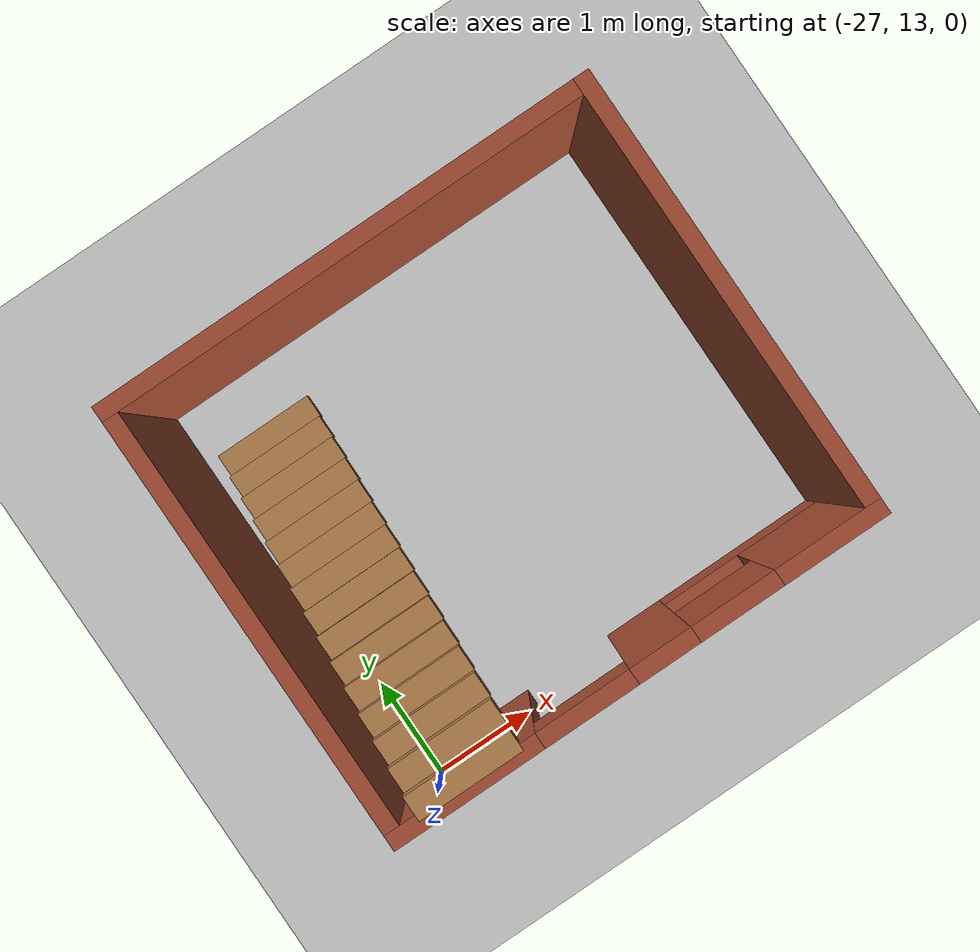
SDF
<sdf version="1.6">
 <world name="default">
  <light name="sun" type="directional">
   <pose>0 0 10 0 -0 0</pose>
   <diffuse>0.8 0.8 0.8 1</diffuse>
   <specular>0.2 0.2 0.2 1</specular>
   <attenuation>
    <range>1000</range>
    <constant>0.9</constant>
    <linear>0.01</linear>
    <quadratic>0.001</quadratic>
   </attenuation>
   <direction>-0.5 0.1 -0.9</direction>
  </light>
  <model name="ground_plane">
   <static>1</static>
   <link name="link">
    <collision name="collision">
     <geometry><plane><normal>0 0 1</normal><size>100 100</size></plane></geometry>
     <surface><friction><ode><mu>100</mu><mu2>50</mu2></ode></friction></surface>
    </collision>
    <visual name="visual">
     <cast_shadows>0</cast_shadows>
     <geometry><plane><normal>0 0 1</normal><size>100 100</size></plane></geometry>
     <material>
      <script><uri>file://media/materials/scripts/gazebo.material</uri><name>Gazebo/Grey</name></script>
     </material>
    </visual>
   </link>
  </model>
  <gravity>0 0 -9.8</gravity>
  <magnetic_field>6e-06 2.3e-05 -4.2e-05</magnetic_field>
  <atmosphere type="adiabatic"/>
  <physics name="default_physics" default="0" type="ode">
   <max_step_size>0.001</max_step_size>
   <real_time_factor>1</real_time_factor>
   <real_time_update_rate>1000</real_time_update_rate>
  </physics>
  <scene><ambient>0.4 0.4 0.4 1</ambient><background>0.7 0.7 0.7 1</background><shadows>1</shadows></scene>
  <spherical_coordinates>
   <surface_model>EARTH_WGS84</surface_model>
   <latitude_deg>0</latitude_deg>
   <longitude_deg>0</longitude_deg>
   <elevation>0</elevation>
   <heading_deg>0</heading_deg>
  </spherical_coordinates>
  <model name="Untitled">
   <pose>-24.9648 15.1998 0 0 -0 0</pose>
   <link name="Stairs_0">
    <visual name="Stairs_0_Visual_0">
     <pose>-1.58 1.29583 0.083333 0 -0 0</pose>
     <geometry><box><size>1 0.233333 0.166667</size></box></geometry>
     <material>
      <script><uri>file://media/materials/scripts/gazebo.material</uri><name>Gazebo/Wood</name></script>
      <ambient>1 1 1 1</ambient>
     </material>
     <meta><layer>0</layer></meta>
    </visual>
    <collision name="Stairs_0_Collision_0">
     <geometry><box><size>1 0.233333 0.166667</size></box></geometry>
     <pose>-1.58 1.29583 0.083333 0 -0 0</pose>
    </collision>
    <visual name="Stairs_0_Visual_1">
     <pose>-1.58 1.0625 0.25 0 -0 0</pose>
     <geometry><box><size>1 0.233333 0.166667</size></box></geometry>
     <material>
      <script><uri>file://media/materials/scripts/gazebo.material</uri><name>Gazebo/Wood</name></script>
      <ambient>1 1 1 1</ambient>
     </material>
     <meta><layer>0</layer></meta>
    </visual>
    <collision name="Stairs_0_Collision_1">
     <geometry><box><size>1 0.233333 0.166667</size></box></geometry>
     <pose>-1.58 1.0625 0.25 0 -0 0</pose>
    </collision>
    <visual name="Stairs_0_Visual_2">
     <pose>-1.58 0.829167 0.416667 0 -0 0</pose>
     <geometry><box><size>1 0.233333 0.166667</size></box></geometry>
     <material>
      <script><uri>file://media/materials/scripts/gazebo.material</uri><name>Gazebo/Wood</name></script>
      <ambient>1 1 1 1</ambient>
     </material>
     <meta><layer>0</layer></meta>
    </visual>
    <collision name="Stairs_0_Collision_2">
     <geometry><box><size>1 0.233333 0.166667</size></box></geometry>
     <pose>-1.58 0.829167 0.416667 0 -0 0</pose>
    </collision>
    <visual name="Stairs_0_Visual_3">
     <pose>-1.58 0.595834 0.583333 0 -0 0</pose>
     <geometry><box><size>1 0.233333 0.166667</size></box></geometry>
     <material>
      <script><uri>file://media/materials/scripts/gazebo.material</uri><name>Gazebo/Wood</name></script>
      <ambient>1 1 1 1</ambient>
     </material>
     <meta><layer>0</layer></meta>
    </visual>
    <collision name="Stairs_0_Collision_3">
     <geometry><box><size>1 0.233333 0.166667</size></box></geometry>
     <pose>-1.58 0.595834 0.583333 0 -0 0</pose>
    </collision>
    <visual name="Stairs_0_Visual_4">
     <pose>-1.58 0.3625 0.75 0 -0 0</pose>
     <geometry><box><size>1 0.233333 0.166667</size></box></geometry>
     <material>
      <script><uri>file://media/materials/scripts/gazebo.material</uri><name>Gazebo/Wood</name></script>
      <ambient>1 1 1 1</ambient>
     </material>
     <meta><layer>0</layer></meta>
    </visual>
    <collision name="Stairs_0_Collision_4">
     <geometry><box><size>1 0.233333 0.166667</size></box></geometry>
     <pose>-1.58 0.3625 0.75 0 -0 0</pose>
    </collision>
    <visual name="Stairs_0_Visual_5">
     <pose>-1.58 0.129167 0.916667 0 -0 0</pose>
     <geometry><box><size>1 0.233333 0.166667</size></box></geometry>
     <material>
      <script><uri>file://media/materials/scripts/gazebo.material</uri><name>Gazebo/Wood</name></script>
      <ambient>1 1 1 1</ambient>
     </material>
     <meta><layer>0</layer></meta>
    </visual>
    <collision name="Stairs_0_Collision_5">
     <geometry><box><size>1 0.233333 0.166667</size></box></geometry>
     <pose>-1.58 0.129167 0.916667 0 -0 0</pose>
    </collision>
    <visual name="Stairs_0_Visual_6">
     <pose>-1.58 -0.104167 1.08333 0 -0 0</pose>
     <geometry><box><size>1 0.233333 0.166667</size></box></geometry>
     <material>
      <script><uri>file://media/materials/scripts/gazebo.material</uri><name>Gazebo/Wood</name></script>
      <ambient>1 1 1 1</ambient>
     </material>
     <meta><layer>0</layer></meta>
    </visual>
    <collision name="Stairs_0_Collision_6">
     <geometry><box><size>1 0.233333 0.166667</size></box></geometry>
     <pose>-1.58 -0.104167 1.08333 0 -0 0</pose>
    </collision>
    <visual name="Stairs_0_Visual_7">
     <pose>-1.58 -0.3375 1.25 0 -0 0</pose>
     <geometry><box><size>1 0.233333 0.166667</size></box></geometry>
     <material>
      <script><uri>file://media/materials/scripts/gazebo.material</uri><name>Gazebo/Wood</name></script>
      <ambient>1 1 1 1</ambient>
     </material>
     <meta><layer>0</layer></meta>
    </visual>
    <collision name="Stairs_0_Collision_7">
     <geometry><box><size>1 0.233333 0.166667</size></box></geometry>
     <pose>-1.58 -0.3375 1.25 0 -0 0</pose>
    </collision>
    <visual name="Stairs_0_Visual_8">
     <pose>-1.58 -0.570833 1.41667 0 -0 0</pose>
     <geometry><box><size>1 0.233333 0.166667</size></box></geometry>
     <material>
      <script><uri>file://media/materials/scripts/gazebo.material</uri><name>Gazebo/Wood</name></script>
      <ambient>1 1 1 1</ambient>
     </material>
     <meta><layer>0</layer></meta>
    </visual>
    <collision name="Stairs_0_Collision_8">
     <geometry><box><size>1 0.233333 0.166667</size></box></geometry>
     <pose>-1.58 -0.570833 1.41667 0 -0 0</pose>
    </collision>
    <visual name="Stairs_0_Visual_9">
     <pose>-1.58 -0.804167 1.58333 0 -0 0</pose>
     <geometry><box><size>1 0.233333 0.166667</size></box></geometry>
     <material>
      <script><uri>file://media/materials/scripts/gazebo.material</uri><name>Gazebo/Wood</name></script>
      <ambient>1 1 1 1</ambient>
     </material>
     <meta><layer>0</layer></meta>
    </visual>
    <collision name="Stairs_0_Collision_9">
     <geometry><box><size>1 0.233333 0.166667</size></box></geometry>
     <pose>-1.58 -0.804167 1.58333 0 -0 0</pose>
    </collision>
    <visual name="Stairs_0_Visual_10">
     <pose>-1.58 -1.0375 1.75 0 -0 0</pose>
     <geometry><box><size>1 0.233333 0.166667</size></box></geometry>
     <material>
      <script><uri>file://media/materials/scripts/gazebo.material</uri><name>Gazebo/Wood</name></script>
      <ambient>1 1 1 1</ambient>
     </material>
     <meta><layer>0</layer></meta>
    </visual>
    <collision name="Stairs_0_Collision_10">
     <geometry><box><size>1 0.233333 0.166667</size></box></geometry>
     <pose>-1.58 -1.0375 1.75 0 -0 0</pose>
    </collision>
    <visual name="Stairs_0_Visual_11">
     <pose>-1.58 -1.27083 1.91667 0 -0 0</pose>
     <geometry><box><size>1 0.233333 0.166667</size></box></geometry>
     <material>
      <script><uri>file://media/materials/scripts/gazebo.material</uri><name>Gazebo/Wood</name></script>
      <ambient>1 1 1 1</ambient>
     </material>
     <meta><layer>0</layer></meta>
    </visual>
    <collision name="Stairs_0_Collision_11">
     <geometry><box><size>1 0.233333 0.166667</size></box></geometry>
     <pose>-1.58 -1.27083 1.91667 0 -0 0</pose>
    </collision>
    <visual name="Stairs_0_Visual_12">
     <pose>-1.58 -1.50417 2.08333 0 -0 0</pose>
     <geometry><box><size>1 0.233333 0.166667</size></box></geometry>
     <material>
      <script><uri>file://media/materials/scripts/gazebo.material</uri><name>Gazebo/Wood</name></script>
      <ambient>1 1 1 1</ambient>
     </material>
     <meta><layer>0</layer></meta>
    </visual>
    <collision name="Stairs_0_Collision_12">
     <geometry><box><size>1 0.233333 0.166667</size></box></geometry>
     <pose>-1.58 -1.50417 2.08333 0 -0 0</pose>
    </collision>
    <visual name="Stairs_0_Visual_13">
     <pose>-1.58 -1.7375 2.25 0 -0 0</pose>
     <geometry><box><size>1 0.233333 0.166667</size></box></geometry>
     <material>
      <script><uri>file://media/materials/scripts/gazebo.material</uri><name>Gazebo/Wood</name></script>
      <ambient>1 1 1 1</ambient>
     </material>
     <meta><layer>0</layer></meta>
    </visual>
    <collision name="Stairs_0_Collision_13">
     <geometry><box><size>1 0.233333 0.166667</size></box></geometry>
     <pose>-1.58 -1.7375 2.25 0 -0 0</pose>
    </collision>
    <visual name="Stairs_0_Visual_14">
     <pose>-1.58 -1.97083 2.41667 0 -0 0</pose>
     <geometry><box><size>1 0.233333 0.166667</size></box></geometry>
     <material>
      <script><uri>file://media/materials/scripts/gazebo.material</uri><name>Gazebo/Wood</name></script>
      <ambient>1 1 1 1</ambient>
     </material>
     <meta><layer>0</layer></meta>
    </visual>
    <collision name="Stairs_0_Collision_14">
     <geometry><box><size>1 0.233333 0.166667</size></box></geometry>
     <pose>-1.58 -1.97083 2.41667 0 -0 0</pose>
    </collision>
   </link>
   <link name="Wall_0">
    <pose>0 -2.0975 0 0 -0 0</pose>
    <visual name="Wall_0_Visual_0">
     <pose>-1.6525 0 1.25 0 -0 0</pose>
     <geometry><box><size>1.445 0.15 2.5</size></box></geometry>
     <material>
      <script><uri>file://media/materials/scripts/gazebo.material</uri><name>Gazebo/Bricks</name></script>
      <ambient>1 1 1 1</ambient>
     </material>
     <meta><layer>0</layer></meta>
    </visual>
    <collision name="Wall_0_Collision_0">
     <geometry><box><size>1.445 0.15 2.5</size></box></geometry>
     <pose>-1.6525 0 1.25 0 -0 0</pose>
    </collision>
    <visual name="Wall_0_Visual_1">
     <pose>0.265 0 1.25 0 -0 0</pose>
     <geometry><box><size>0.59 0.15 2.5</size></box></geometry>
     <material>
      <script><uri>file://media/materials/scripts/gazebo.material</uri><name>Gazebo/Bricks</name></script>
      <ambient>1 1 1 1</ambient>
     </material>
     <meta><layer>0</layer></meta>
    </visual>
    <collision name="Wall_0_Collision_1">
     <geometry><box><size>0.59 0.15 2.5</size></box></geometry>
     <pose>0.265 0 1.25 0 -0 0</pose>
    </collision>
    <visual name="Wall_0_Visual_2">
     <pose>1.4675 0 0.25 0 -0 0</pose>
     <geometry><box><size>1.815 0.15 0.5</size></box></geometry>
     <material>
      <script><uri>file://media/materials/scripts/gazebo.material</uri><name>Gazebo/Bricks</name></script>
      <ambient>1 1 1 1</ambient>
     </material>
     <meta><layer>0</layer></meta>
    </visual>
    <collision name="Wall_0_Collision_2">
     <geometry><box><size>1.815 0.15 0.5</size></box></geometry>
     <pose>1.4675 0 0.25 0 -0 0</pose>
    </collision>
    <visual name="Wall_0_Visual_3">
     <pose>1.8675 0 1.5 0 -0 0</pose>
     <geometry><box><size>1.015 0.15 2</size></box></geometry>
     <material>
      <script><uri>file://media/materials/scripts/gazebo.material</uri><name>Gazebo/Bricks</name></script>
      <ambient>1 1 1 1</ambient>
     </material>
     <meta><layer>0</layer></meta>
    </visual>
    <collision name="Wall_0_Collision_3">
     <geometry><box><size>1.015 0.15 2</size></box></geometry>
     <pose>1.8675 0 1.5 0 -0 0</pose>
    </collision>
    <visual name="Wall_0_Visual_4">
     <pose>0.96 0 1.9 0 -0 0</pose>
     <geometry><box><size>0.8 0.15 1.2</size></box></geometry>
     <material>
      <script><uri>file://media/materials/scripts/gazebo.material</uri><name>Gazebo/Bricks</name></script>
      <ambient>1 1 1 1</ambient>
     </material>
     <meta><layer>0</layer></meta>
    </visual>
    <collision name="Wall_0_Collision_4">
     <geometry><box><size>0.8 0.15 1.2</size></box></geometry>
     <pose>0.96 0 1.9 0 -0 0</pose>
    </collision>
    <visual name="Wall_0_Visual_5">
     <pose>-0.48 0 2.25 0 -0 0</pose>
     <geometry><box><size>0.9 0.15 0.5</size></box></geometry>
     <material>
      <script><uri>file://media/materials/scripts/gazebo.material</uri><name>Gazebo/Bricks</name></script>
      <ambient>1 1 1 1</ambient>
     </material>
     <meta><layer>0</layer></meta>
    </visual>
    <collision name="Wall_0_Collision_5">
     <geometry><box><size>0.9 0.15 0.5</size></box></geometry>
     <pose>-0.48 0 2.25 0 -0 0</pose>
    </collision>
   </link>
   <link name="Wall_1">
    <collision name="Wall_1_Collision">
     <geometry><box><size>4.25 0.15 2.5</size></box></geometry>
     <pose>0 0 1.25 0 -0 0</pose>
    </collision>
    <visual name="Wall_1_Visual">
     <pose>0 0 1.25 0 -0 0</pose>
     <geometry><box><size>4.25 0.15 2.5</size></box></geometry>
     <material>
      <script><uri>file://media/materials/scripts/gazebo.material</uri><name>Gazebo/Bricks</name></script>
      <ambient>1 1 1 1</ambient>
     </material>
     <meta><layer>0</layer></meta>
    </visual>
    <pose>2.3 -0.0475 0 0 -0 1.5708</pose>
   </link>
   <link name="Wall_2">
    <collision name="Wall_2_Collision">
     <geometry><box><size>4.75 0.15 2.5</size></box></geometry>
     <pose>0 0 1.25 0 -0 0</pose>
    </collision>
    <visual name="Wall_2_Visual">
     <pose>0 0 1.25 0 -0 0</pose>
     <geometry><box><size>4.75 0.15 2.5</size></box></geometry>
     <material>
      <script><uri>file://media/materials/scripts/gazebo.material</uri><name>Gazebo/Bricks</name></script>
      <ambient>1 1 1 1</ambient>
     </material>
     <meta><layer>0</layer></meta>
    </visual>
    <pose>0 2.0025 0 0 -0 3.14159</pose>
   </link>
   <link name="Wall_3">
    <collision name="Wall_3_Collision">
     <geometry><box><size>4.25 0.15 2.5</size></box></geometry>
     <pose>0 0 1.25 0 -0 0</pose>
    </collision>
    <visual name="Wall_3_Visual">
     <pose>0 0 1.25 0 -0 0</pose>
     <geometry><box><size>4.25 0.15 2.5</size></box></geometry>
     <material>
      <script><uri>file://media/materials/scripts/gazebo.material</uri><name>Gazebo/Bricks</name></script>
      <ambient>1 1 1 1</ambient>
     </material>
     <meta><layer>0</layer></meta>
    </visual>
    <pose>-2.3 -0.0475 0 0 -0 -1.5708</pose>
   </link>
   <static>1</static>
  </model>
 </world>
</sdf>
